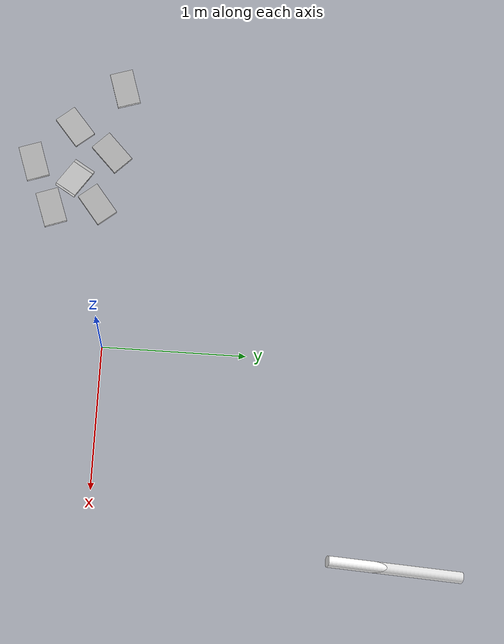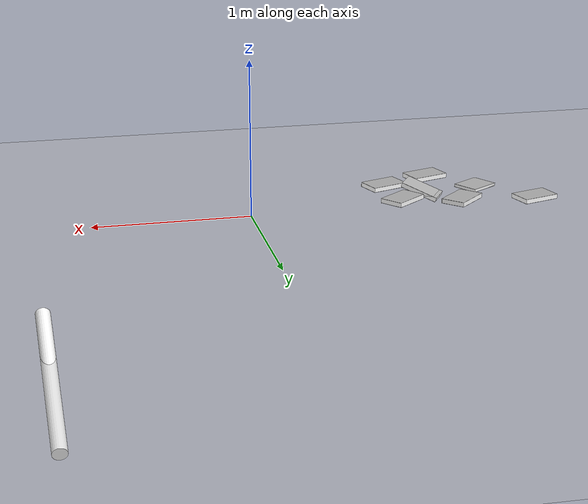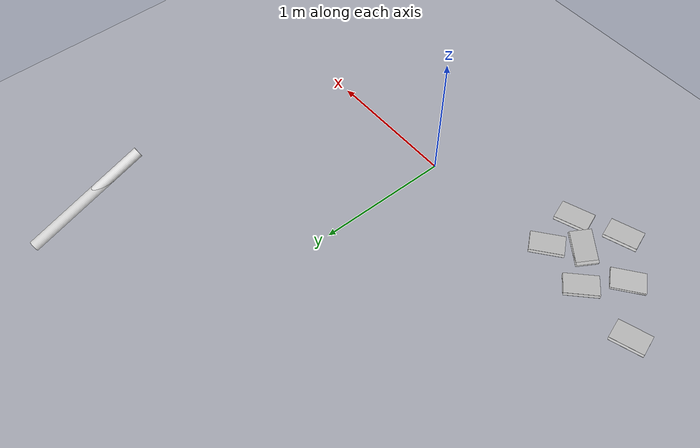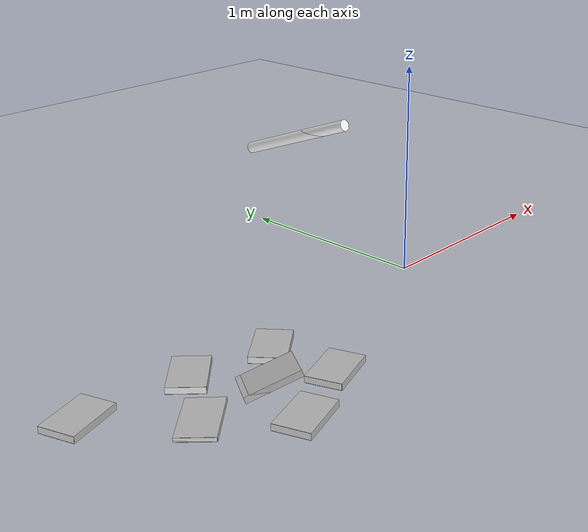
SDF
<sdf version="1.6">
 <world name="default">
  <model name="ground_plane">
   <static>1</static>
   <link name="link">
    <collision name="collision">
     <geometry><plane><normal>0 0 1</normal><size>100 100</size></plane></geometry>
     <surface><friction><ode><mu>100</mu><mu2>50</mu2></ode></friction></surface>
    </collision>
    <visual name="visual">
     <cast_shadows>0</cast_shadows>
     <geometry><plane><normal>0 0 1</normal><size>100 100</size></plane></geometry>
     <material>
      <script><uri>file://media/materials/scripts/gazebo.material</uri><name>Gazebo/Grey</name></script>
     </material>
    </visual>
   </link>
  </model>
  <model name="book_3">
   <link name="cover">
    <pose>0 -0.000108 0.01 0 -0 0</pose>
    <visual name="visual">
     <geometry><box><size>0.245 0.16 0.02</size></box></geometry>
     <material>
      <script>
       <uri>model://book_3/materials/scripts</uri>
       <uri>model://book_3/materials/textures</uri>
       <name>book_3</name>
      </script>
     </material>
    </visual>
    <collision name="collision"><geometry><box><size>0.245 0.16 0.02</size></box></geometry></collision>
   </link>
   <link name="page">
    <pose>0 0.000608 0.01 0 -0 0</pose>
    <visual name="visual">
     <geometry><box><size>0.24502 0.15862 0.018</size></box></geometry>
     <material>
      <lighting>1</lighting>
      <ambient>1 1 1 1</ambient>
      <diffuse>1 1 1 1</diffuse>
      <specular>0.01 0.01 0.01 1</specular>
      <emissive>0 0 0 1</emissive>
      <shader type="vertex"><normal_map>__default__</normal_map></shader>
     </material>
    </visual>
    <collision name="collision"><geometry><box><size>0.245 0.16 0.018</size></box></geometry></collision>
   </link>
   <static>1</static>
   <pose>-1.55639 -0.306048 0 -0.051653 -0.061662 0.698045</pose>
  </model>
  <model name="book_17">
   <link name="cover">
    <pose>0 -0.000108 0.015405 0 -0 0</pose>
    <visual name="visual">
     <geometry><box><size>0.245 0.16 0.03</size></box></geometry>
     <material>
      <script>
       <uri>model://book_17/materials/scripts</uri>
       <uri>model://book_17/materials/textures</uri>
       <name>book_17</name>
      </script>
     </material>
    </visual>
    <collision name="collision"><geometry><box><size>0.245 0.16 0.03</size></box></geometry></collision>
   </link>
   <link name="page">
    <pose>0 0.000608 0.015405 0 -0 0</pose>
    <visual name="visual">
     <geometry><box><size>0.24502 0.15862 0.028</size></box></geometry>
     <material>
      <lighting>1</lighting>
      <ambient>1 1 1 1</ambient>
      <diffuse>1 1 1 1</diffuse>
      <specular>0.01 0.01 0.01 1</specular>
      <emissive>0 0 0 1</emissive>
      <shader type="vertex"><normal_map>__default__</normal_map></shader>
     </material>
    </visual>
    <collision name="collision"><geometry><box><size>0.245 0.16 0.03</size></box></geometry></collision>
   </link>
   <static>1</static>
   <pose>-1.18181 -0.281564 0 0 -0.341677 -0.538925</pose>
  </model>
  <model name="book_14">
   <link name="cover">
    <pose>0 -0.000108 0.015405 0 -0 0</pose>
    <visual name="visual">
     <geometry><box><size>0.245 0.16 0.03</size></box></geometry>
     <material>
      <script>
       <uri>model://book_14/materials/scripts</uri>
       <uri>model://book_14/materials/textures</uri>
       <name>book_14</name>
      </script>
     </material>
    </visual>
    <collision name="collision"><geometry><box><size>0.245 0.16 0.03</size></box></geometry></collision>
   </link>
   <link name="page">
    <pose>0 0.000608 0.015405 0 -0 0</pose>
    <visual name="visual">
     <geometry><box><size>0.24502 0.15862 0.028</size></box></geometry>
     <material>
      <lighting>1</lighting>
      <ambient>1 1 1 1</ambient>
      <diffuse>1 1 1 1</diffuse>
      <specular>0.01 0.01 0.01 1</specular>
      <emissive>0 0 0 1</emissive>
      <shader type="vertex"><normal_map>__default__</normal_map></shader>
     </material>
    </visual>
    <collision name="collision"><geometry><box><size>0.245 0.16 0.03</size></box></geometry></collision>
   </link>
   <static>1</static>
   <pose>-1.28746 -0.574073 0 0 -0 0.32355</pose>
  </model>
  <model name="book_11_1">
   <link name="cover">
    <pose>0 -0.000108 0.015405 0 -0 0</pose>
    <visual name="visual">
     <geometry><box><size>0.245 0.16 0.03</size></box></geometry>
     <material>
      <script>
       <uri>model://book_11/materials/scripts</uri>
       <uri>model://book_11/materials/textures</uri>
       <name>book_11</name>
      </script>
     </material>
    </visual>
    <collision name="collision"><geometry><box><size>0.245 0.16 0.03</size></box></geometry></collision>
   </link>
   <link name="page">
    <pose>0 0.000608 0.015405 0 -0 0</pose>
    <visual name="visual">
     <geometry><box><size>0.24502 0.15862 0.028</size></box></geometry>
     <material>
      <lighting>1</lighting>
      <ambient>1 1 1 1</ambient>
      <diffuse>1 1 1 1</diffuse>
      <specular>0.01 0.01 0.01 1</specular>
      <emissive>0 0 0 1</emissive>
      <shader type="vertex"><normal_map>__default__</normal_map></shader>
     </material>
    </visual>
    <collision name="collision"><geometry><box><size>0.245 0.16 0.03</size></box></geometry></collision>
   </link>
   <static>1</static>
   <pose>-0.966465 -0.42728 0 0 -0 0.339859</pose>
  </model>
  <model name="book_19_0">
   <link name="cover">
    <pose>0 -0.000108 0.015405 0 -0 0</pose>
    <visual name="visual">
     <geometry><box><size>0.245 0.16 0.03</size></box></geometry>
     <material>
      <script>
       <uri>model://book_19/materials/scripts</uri>
       <uri>model://book_19/materials/textures</uri>
       <name>book_19</name>
      </script>
     </material>
    </visual>
    <collision name="collision"><geometry><box><size>0.245 0.16 0.03</size></box></geometry></collision>
   </link>
   <link name="page">
    <pose>0 0.000608 0.015405 0 -0 0</pose>
    <visual name="visual">
     <geometry><box><size>0.24502 0.15862 0.028</size></box></geometry>
     <material>
      <lighting>1</lighting>
      <ambient>1 1 1 1</ambient>
      <diffuse>1 1 1 1</diffuse>
      <specular>0.01 0.01 0.01 1</specular>
      <emissive>0 0 0 1</emissive>
      <shader type="vertex"><normal_map>__default__</normal_map></shader>
     </material>
    </visual>
    <collision name="collision"><geometry><box><size>0.245 0.16 0.03</size></box></geometry></collision>
   </link>
   <static>1</static>
   <pose>-1.85622 0.022842 0 0 -0 0.305638</pose>
  </model>
  <model name="book_13">
   <link name="cover">
    <pose>0 -0.000108 0.015405 0 -0 0</pose>
    <visual name="visual">
     <geometry><box><size>0.245 0.16 0.03</size></box></geometry>
     <material>
      <script>
       <uri>model://book_13/materials/scripts</uri>
       <uri>model://book_13/materials/textures</uri>
       <name>book_13</name>
      </script>
     </material>
    </visual>
    <collision name="collision"><geometry><box><size>0.245 0.16 0.03</size></box></geometry></collision>
   </link>
   <link name="page">
    <pose>0 0.000608 0.015405 0 -0 0</pose>
    <visual name="visual">
     <geometry><box><size>0.24502 0.15862 0.028</size></box></geometry>
     <material>
      <lighting>1</lighting>
      <ambient>1 1 1 1</ambient>
      <diffuse>1 1 1 1</diffuse>
      <specular>0.01 0.01 0.01 1</specular>
      <emissive>0 0 0 1</emissive>
      <shader type="vertex"><normal_map>__default__</normal_map></shader>
     </material>
    </visual>
    <collision name="collision"><geometry><box><size>0.245 0.16 0.03</size></box></geometry></collision>
   </link>
   <static>1</static>
   <pose>-1.38458 -0.034084 0 0 -0 0.773666</pose>
  </model>
  <model name="book_11_2">
   <link name="cover">
    <pose>0 -0.000108 0.015405 0 -0 0</pose>
    <visual name="visual">
     <geometry><box><size>0.245 0.16 0.03</size></box></geometry>
     <material>
      <script>
       <uri>model://book_11/materials/scripts</uri>
       <uri>model://book_11/materials/textures</uri>
       <name>book_11</name>
      </script>
     </material>
    </visual>
    <collision name="collision"><geometry><box><size>0.245 0.16 0.03</size></box></geometry></collision>
   </link>
   <link name="page">
    <pose>0 0.000608 0.015405 0 -0 0</pose>
    <visual name="visual">
     <geometry><box><size>0.24502 0.15862 0.028</size></box></geometry>
     <material>
      <lighting>1</lighting>
      <ambient>1 1 1 1</ambient>
      <diffuse>1 1 1 1</diffuse>
      <specular>0.01 0.01 0.01 1</specular>
      <emissive>0 0 0 1</emissive>
      <shader type="vertex"><normal_map>__default__</normal_map></shader>
     </material>
    </visual>
    <collision name="collision"><geometry><box><size>0.245 0.16 0.03</size></box></geometry></collision>
   </link>
   <static>1</static>
   <pose>-1.00812 -0.10708 0 0 -0 0.67196</pose>
  </model>
  <model name="kinect_pilar">
   <static>1</static>
   <pose>1.39823 2.11633 -0.068003 1.21207 -0 0</pose>
   <link name="link">
    <inertial>
     <mass>1</mass>
     <inertia><ixx>0.145833</ixx><ixy>0</ixy><ixz>0</ixz><iyy>0.145833</iyy><iyz>0</iyz><izz>0.125</izz></inertia>
    </inertial>
    <collision name="collision">
     <geometry><cylinder><radius>0.04</radius><length>1</length></cylinder></geometry>
    </collision>
    <visual name="visual">
     <geometry><cylinder><radius>0.04</radius><length>1</length></cylinder></geometry>
     <material>
      <script><uri>file://media/materials/scripts/gazebo.material</uri><name>Gazebo/Metal</name></script>
      <ambient>1 1 1 1</ambient>
     </material>
    </visual>
   </link>
  </model>
 </world>
</sdf>
